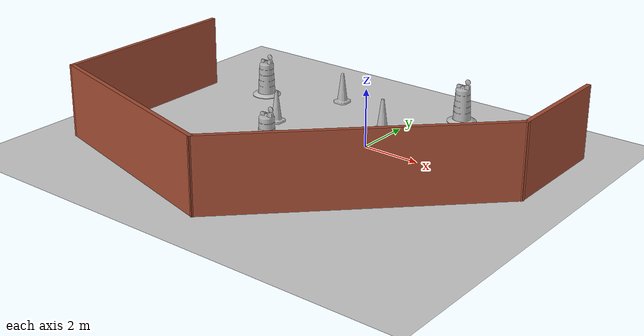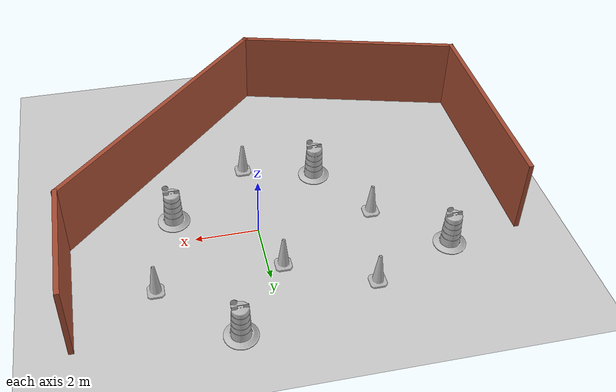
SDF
<sdf version="1.7">
 <world name="default">
  <light name="sun" type="directional">
   <pose>0 0 10 0 -0 0</pose>
   <diffuse>0.8 0.8 0.8 1</diffuse>
   <specular>0.2 0.2 0.2 1</specular>
   <attenuation>
    <range>1000</range>
    <constant>0.9</constant>
    <linear>0.01</linear>
    <quadratic>0.001</quadratic>
   </attenuation>
   <direction>-0.5 0.1 -0.9</direction>
   <spot><inner_angle>0</inner_angle><outer_angle>0</outer_angle><falloff>0</falloff></spot>
  </light>
  <model name="ground_plane">
   <static>1</static>
   <link name="link">
    <collision name="collision">
     <geometry><plane><normal>0 0 1</normal><size>100 100</size></plane></geometry>
     <surface>
      <contact><collide_bitmask>65535</collide_bitmask></contact>
      <friction><ode><mu>100</mu><mu2>50</mu2></ode></friction>
     </surface>
    </collision>
    <visual name="visual">
     <cast_shadows>0</cast_shadows>
     <geometry><plane><normal>0 0 1</normal><size>100 100</size></plane></geometry>
     <material>
      <script><uri>file://media/materials/scripts/gazebo.material</uri><name>Gazebo/Grey</name></script>
     </material>
    </visual>
   </link>
  </model>
  <gravity>0 0 -9.8</gravity>
  <magnetic_field>6e-06 2.3e-05 -4.2e-05</magnetic_field>
  <atmosphere type="adiabatic"/>
  <physics type="ode">
   <max_step_size>0.001</max_step_size>
   <real_time_factor>1</real_time_factor>
   <real_time_update_rate>1000</real_time_update_rate>
  </physics>
  <scene><ambient>0.4 0.4 0.4 1</ambient><background>0.7 0.7 0.7 1</background><shadows>1</shadows></scene>
  <spherical_coordinates>
   <surface_model>EARTH_WGS84</surface_model>
   <latitude_deg>0</latitude_deg>
   <longitude_deg>0</longitude_deg>
   <elevation>0</elevation>
   <heading_deg>0</heading_deg>
  </spherical_coordinates>
  <model name="Construction Cone">
   <link name="link">
    <collision name="collision">
     <geometry>
      <mesh><scale>10 10 10</scale><uri>model://construction_cone/meshes/construction_cone.dae</uri></mesh>
     </geometry>
    </collision>
    <visual name="visual">
     <geometry>
      <mesh><scale>10 10 10</scale><uri>model://construction_cone/meshes/construction_cone.dae</uri></mesh>
     </geometry>
    </visual>
    <inertial>
     <inertia><ixx>1</ixx><ixy>0</ixy><ixz>0</ixz><iyy>1</iyy><iyz>0</iyz><izz>1</izz></inertia>
     <mass>1</mass>
    </inertial>
   </link>
   <pose>-0.452672 1.57811 -0 0 -0 0</pose>
  </model>
  <model name="Construction Barrel">
   <link name="link">
    <inertial>
     <pose>0 0 0.4 0 -0 0</pose>
     <mass>500</mass>
     <inertia><ixx>51.2096</ixx><iyy>51.2096</iyy><izz>25</izz><ixy>0</ixy><ixz>0</ixz><iyz>0</iyz></inertia>
    </inertial>
    <collision name="collision">
     <geometry><mesh><uri>model://construction_barrel/meshes/construction_barrel.dae</uri></mesh></geometry>
    </collision>
    <visual name="visual">
     <geometry><mesh><uri>model://construction_barrel/meshes/construction_barrel.dae</uri></mesh></geometry>
    </visual>
   </link>
   <pose>1.24321 3.89345 -1e-06 3e-06 7e-06 -1.5e-05</pose>
  </model>
  <model name="Construction Cone_0">
   <link name="link">
    <collision name="collision">
     <geometry>
      <mesh><scale>10 10 10</scale><uri>model://construction_cone/meshes/construction_cone.dae</uri></mesh>
     </geometry>
    </collision>
    <visual name="visual">
     <geometry>
      <mesh><scale>10 10 10</scale><uri>model://construction_cone/meshes/construction_cone.dae</uri></mesh>
     </geometry>
    </visual>
    <inertial>
     <inertia><ixx>1</ixx><ixy>0</ixy><ixz>0</ixz><iyy>1</iyy><iyz>0</iyz><izz>1</izz></inertia>
     <mass>1</mass>
    </inertial>
   </link>
   <pose>-3.04433 2.77642 -0 0 -0 0</pose>
  </model>
  <model name="Construction Cone_1">
   <link name="link">
    <collision name="collision">
     <geometry>
      <mesh><scale>10 10 10</scale><uri>model://construction_cone/meshes/construction_cone.dae</uri></mesh>
     </geometry>
    </collision>
    <visual name="visual">
     <geometry>
      <mesh><scale>10 10 10</scale><uri>model://construction_cone/meshes/construction_cone.dae</uri></mesh>
     </geometry>
    </visual>
    <inertial>
     <inertia><ixx>1</ixx><ixy>0</ixy><ixz>0</ixz><iyy>1</iyy><iyz>0</iyz><izz>1</izz></inertia>
     <mass>1</mass>
    </inertial>
   </link>
   <pose>-3.68097 -0.110706 -1e-05 -1e-06 0 0</pose>
  </model>
  <model name="Construction Cone_2">
   <link name="link">
    <collision name="collision">
     <geometry>
      <mesh><scale>10 10 10</scale><uri>model://construction_cone/meshes/construction_cone.dae</uri></mesh>
     </geometry>
    </collision>
    <visual name="visual">
     <geometry>
      <mesh><scale>10 10 10</scale><uri>model://construction_cone/meshes/construction_cone.dae</uri></mesh>
     </geometry>
    </visual>
    <inertial>
     <inertia><ixx>1</ixx><ixy>0</ixy><ixz>0</ixz><iyy>1</iyy><iyz>0</iyz><izz>1</izz></inertia>
     <mass>1</mass>
    </inertial>
   </link>
   <pose>-0.011143 -2.86294 -0 0 -1e-06 0</pose>
  </model>
  <model name="Construction Barrel_0">
   <link name="link">
    <inertial>
     <pose>0 0 0.4 0 -0 0</pose>
     <mass>500</mass>
     <inertia><ixx>51.2096</ixx><iyy>51.2096</iyy><izz>25</izz><ixy>0</ixy><ixz>0</ixz><iyz>0</iyz></inertia>
    </inertial>
    <collision name="collision">
     <geometry><mesh><uri>model://construction_barrel/meshes/construction_barrel.dae</uri></mesh></geometry>
    </collision>
    <visual name="visual">
     <geometry><mesh><uri>model://construction_barrel/meshes/construction_barrel.dae</uri></mesh></geometry>
    </visual>
   </link>
   <pose>-2.3099 -2.21788 -2e-06 -0 7e-06 -8e-06</pose>
  </model>
  <model name="Construction Barrel_1">
   <link name="link">
    <inertial>
     <pose>0 0 0.4 0 -0 0</pose>
     <mass>500</mass>
     <inertia><ixx>51.2096</ixx><iyy>51.2096</iyy><izz>25</izz><ixy>0</ixy><ixz>0</ixz><iyz>0</iyz></inertia>
    </inertial>
    <collision name="collision">
     <geometry><mesh><uri>model://construction_barrel/meshes/construction_barrel.dae</uri></mesh></geometry>
    </collision>
    <visual name="visual">
     <geometry><mesh><uri>model://construction_barrel/meshes/construction_barrel.dae</uri></mesh></geometry>
    </visual>
   </link>
   <pose>-5.67955 1.70123 -1e-06 3e-06 1e-05 -7e-06</pose>
  </model>
  <model name="Construction Barrel_2">
   <link name="link">
    <inertial>
     <pose>0 0 0.4 0 -0 0</pose>
     <mass>500</mass>
     <inertia><ixx>51.2096</ixx><iyy>51.2096</iyy><izz>25</izz><ixy>0</ixy><ixz>0</ixz><iyz>0</iyz></inertia>
    </inertial>
    <collision name="collision">
     <geometry><mesh><uri>model://construction_barrel/meshes/construction_barrel.dae</uri></mesh></geometry>
    </collision>
    <visual name="visual">
     <geometry><mesh><uri>model://construction_barrel/meshes/construction_barrel.dae</uri></mesh></geometry>
    </visual>
   </link>
   <pose>2.5489 -0.949034 1e-06 2e-06 3e-06 -6e-06</pose>
  </model>
  <model name="Construction Cone_3">
   <link name="link">
    <collision name="collision">
     <geometry>
      <mesh><scale>10 10 10</scale><uri>model://construction_cone/meshes/construction_cone.dae</uri></mesh>
     </geometry>
    </collision>
    <visual name="visual">
     <geometry>
      <mesh><scale>10 10 10</scale><uri>model://construction_cone/meshes/construction_cone.dae</uri></mesh>
     </geometry>
    </visual>
    <inertial>
     <inertia><ixx>1</ixx><ixy>0</ixy><ixz>0</ixz><iyy>1</iyy><iyz>0</iyz><izz>1</izz></inertia>
     <mass>1</mass>
    </inertial>
   </link>
   <pose>3.40881 1.86577 -0 0 -0 0</pose>
  </model>
  <model name="Untitled">
   <pose>-1.04854 -1.81744 0 0 -0 0</pose>
   <link name="Wall_5">
    <collision name="Wall_5_Collision">
     <geometry><box><size>6.75 0.15 2.5</size></box></geometry>
     <pose>0 0 1.25 0 -0 0</pose>
    </collision>
    <visual name="Wall_5_Visual">
     <pose>0 0 1.25 0 -0 0</pose>
     <geometry><box><size>6.75 0.15 2.5</size></box></geometry>
     <material>
      <script><uri>file://media/materials/scripts/gazebo.material</uri><name>Gazebo/Bricks</name></script>
      <ambient>1 1 1 1</ambient>
     </material>
     <meta><layer>0</layer></meta>
    </visual>
    <pose>-6.95099 -0.101259 0 0 -0 -1.5708</pose>
   </link>
   <link name="Wall_6">
    <collision name="Wall_6_Collision">
     <geometry><box><size>7.5 0.15 2.5</size></box></geometry>
     <pose>0 0 1.25 0 -0 0</pose>
    </collision>
    <visual name="Wall_6_Visual">
     <pose>0 0 1.25 0 -0 0</pose>
     <geometry><box><size>7.5 0.15 2.5</size></box></geometry>
     <material>
      <script><uri>file://media/materials/scripts/gazebo.material</uri><name>Gazebo/Bricks</name></script>
      <ambient>1 1 1 1</ambient>
     </material>
     <meta><layer>0</layer></meta>
    </visual>
    <pose>-3.40122 -4.35242 0 0 -0 -0.261799</pose>
   </link>
   <link name="Wall_7">
    <collision name="Wall_7_Collision">
     <geometry><box><size>9.75 0.15 2.5</size></box></geometry>
     <pose>0 0 1.25 0 -0 0</pose>
    </collision>
    <visual name="Wall_7_Visual">
     <pose>0 0 1.25 0 -0 0</pose>
     <geometry><box><size>9.75 0.15 2.5</size></box></geometry>
     <material>
      <script><uri>file://media/materials/scripts/gazebo.material</uri><name>Gazebo/Bricks</name></script>
      <ambient>1 1 1 1</ambient>
     </material>
     <meta><layer>0</layer></meta>
    </visual>
    <pose>3.54267 -1.90947 0 0 -0 0.785398</pose>
   </link>
   <link name="Wall_8">
    <collision name="Wall_8_Collision">
     <geometry><box><size>4 0.15 2.5</size></box></geometry>
     <pose>0 0 1.25 0 -0 0</pose>
    </collision>
    <visual name="Wall_8_Visual">
     <pose>0 0 1.25 0 -0 0</pose>
     <geometry><box><size>4 0.15 2.5</size></box></geometry>
     <material>
      <script><uri>file://media/materials/scripts/gazebo.material</uri><name>Gazebo/Bricks</name></script>
      <ambient>1 1 1 1</ambient>
     </material>
     <meta><layer>0</layer></meta>
    </visual>
    <pose>6.93679 3.40965 0 0 -0 1.5708</pose>
   </link>
   <static>1</static>
  </model>
 </world>
</sdf>
